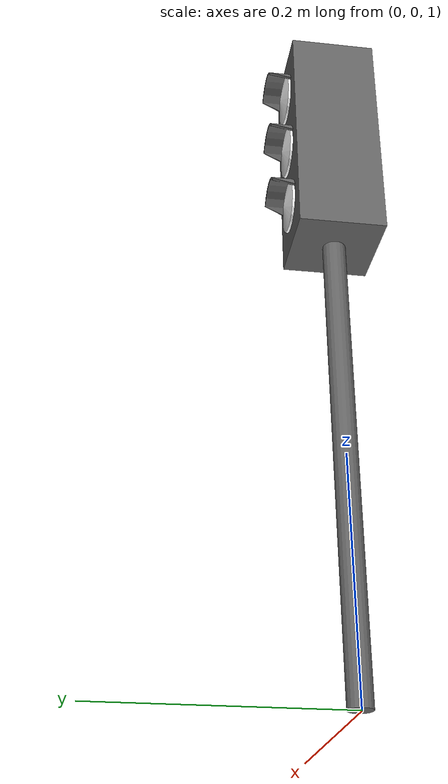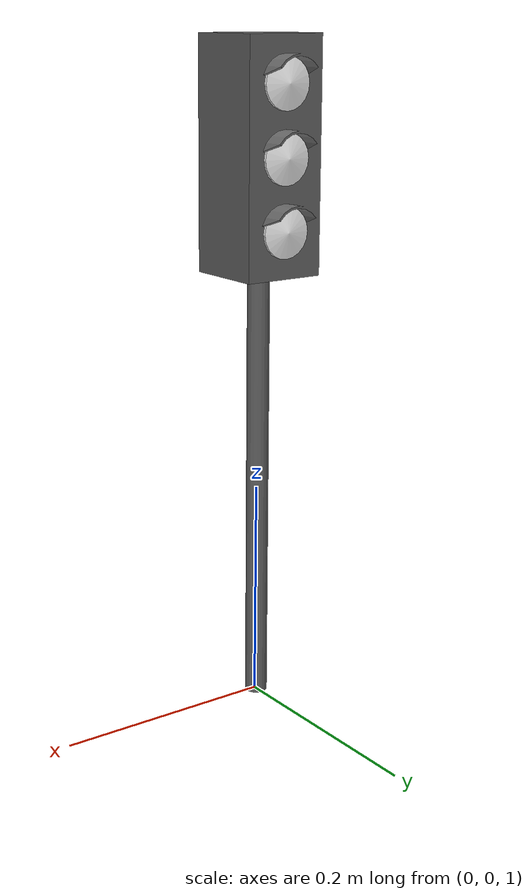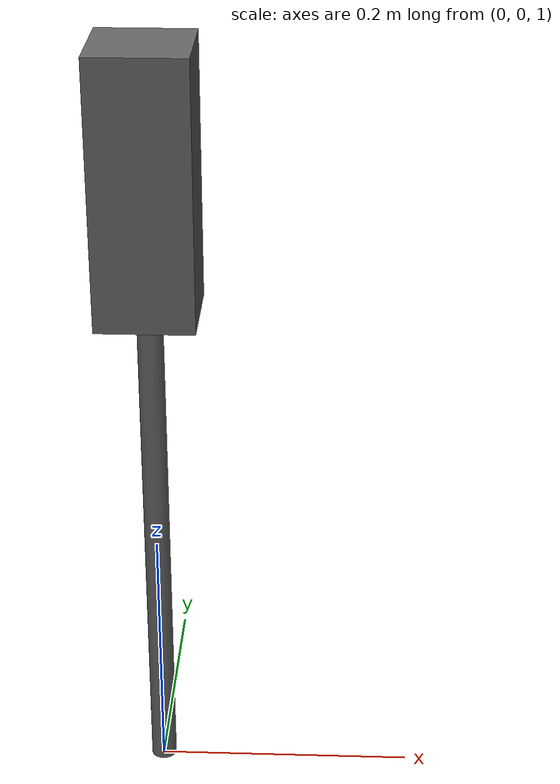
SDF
<?xml version="1.0" ?>
<sdf version="1.4">
  <model name="MascorCity_TrafficLight">
    <static>true</static>
    <link name="trafficlight_body_link">
      <pose>0 0 1.2 1.5708 0 0</pose>
      <collision name="body_collision">
        <geometry>
          <mesh>
            <uri>model://mc_trafficlight/meshes/MascorCity_Trafficlight_Body.dae</uri>
            <scale>1 1 1</scale>
          </mesh>
        </geometry>
      </collision>
      <visual name="body_visual">
        <geometry>
          <mesh>
            <uri>model://mc_trafficlight/meshes/MascorCity_Trafficlight_Body.dae</uri>
            <scale>1 1 1</scale>
          </mesh>
        </geometry>
      </visual>
    </link>

  <link name="trafficlight_light_RED_link">
      <pose>0 0 1.2 1.5708 0 0</pose>
      <collision name="lights_RED_colision">
        <geometry>
           <mesh>
            <uri>model://mc_trafficlight/meshes/MascorCity_Trafficlight_Lights_RED.dae</uri>
            <scale>1 1 1</scale>
          </mesh>
        </geometry>
      </collision>
      <visual name="lights_RED_visual">
        <geometry>
          <mesh>
            <uri>model://mc_trafficlight/meshes/MascorCity_Trafficlight_Lights_RED.dae</uri>
            <scale>1 1 1</scale>
          </mesh>
        </geometry>
      <material>
          <ambient>1 1 1 1</ambient>
		  <diffuse>1 1 1 1</diffuse>
      </material>
      </visual>
    </link>

<link name="trafficlight_light_YELLOW_link">
      <pose>0 0 1.2 1.5708 0 0</pose>
      <collision name="lights_YELLOW_colision">
        <geometry>
           <mesh>
            <uri>model://mc_trafficlight/meshes/MascorCity_Trafficlight_Lights_YELLOW.dae</uri>
            <scale>1 1 1</scale>
          </mesh>
        </geometry>
      </collision>
      <visual name="lights_YELLOW_visual">
        <geometry>
          <mesh>
            <uri>model://mc_trafficlight/meshes/MascorCity_Trafficlight_Lights_YELLOW.dae</uri>
            <scale>1 1 1</scale>
          </mesh>
        </geometry>
      <material>
          <ambient>1 1 1 1</ambient>
		  <diffuse>1 1 1 1</diffuse>
      </material>
      </visual>
    </link>

<link name="trafficlight_light_GREEN_link">
      <pose>0 0 1.2 1.5708 0 0</pose>
      <collision name="lights_GREEN_colision">
        <geometry>
           <mesh>
            <uri>model://mc_trafficlight/meshes/MascorCity_Trafficlight_Lights_GREEN.dae</uri>
            <scale>1 1 1</scale>
          </mesh>
        </geometry>
      </collision>
      <visual name="lights_GREEN_visual">
        <geometry>
          <mesh>
            <uri>model://mc_trafficlight/meshes/MascorCity_Trafficlight_Lights_GREEN.dae</uri>
            <scale>1 1 1</scale>
          </mesh>
        </geometry>
     <material>
          <ambient>1 1 1 1</ambient>
		  <diffuse>1 1 1 1</diffuse>
      </material>
      </visual>
    </link>

	 <link name="trafficlight_stand_link">
      <pose>0 0 1.2 1.5708 0 0</pose>
      <collision name="stand_colision">
        <geometry>
           <mesh>
            <uri>model://mc_trafficlight/meshes/MascorCity_Trafficlight_Stand.dae</uri>
            <scale>1 1 1</scale>
          </mesh>
        </geometry>
      </collision>
      <visual name="stand_visual">
        <geometry>
          <mesh>
            <uri>model://mc_trafficlight/meshes/MascorCity_Trafficlight_Stand.dae</uri>
            <scale>1 1 1</scale>
          </mesh>
        </geometry>
      </visual>
    </link>

  </model>
</sdf>
